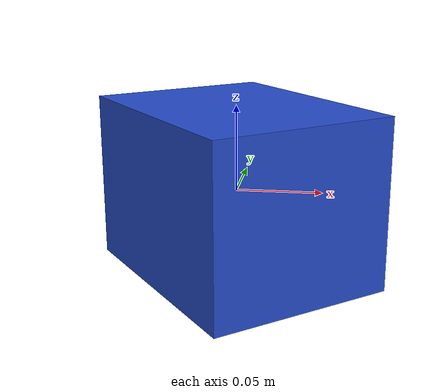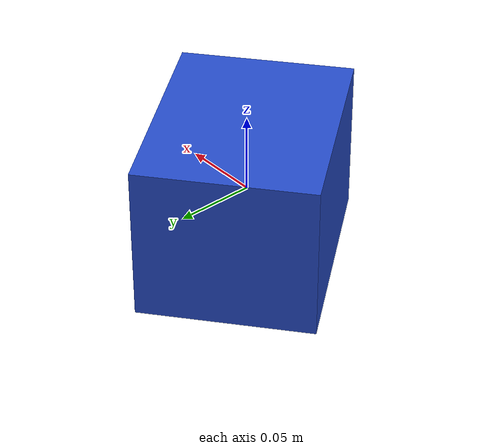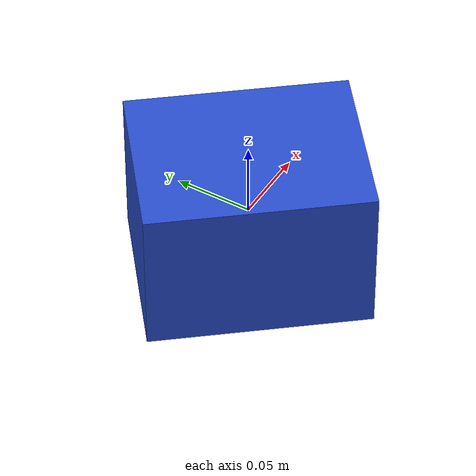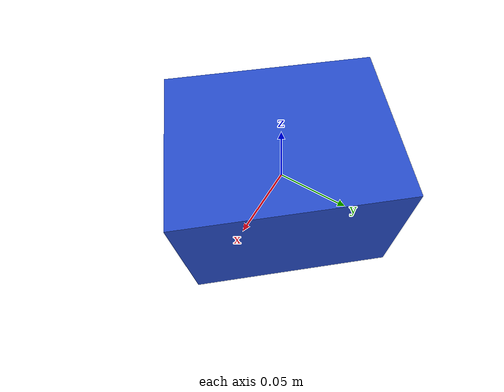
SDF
<sdf version="1.6"><model name="model_22"><static>true</static><link name="link"><pose>0 0 0 0 0 0.6770716597892771</pose><collision name="collision"><geometry><box><size>0.11011954436759314 0.1408347427548966 0.1</size></box></geometry></collision><visual name="visual"><geometry><box><size>0.11011954436759314 0.1408347427548966 0.1</size></box></geometry><material><script><name>Gazebo/Blue</name><uri>file://media/materials/scripts/gazebo.material</uri></script></material></visual></link></model></sdf>
